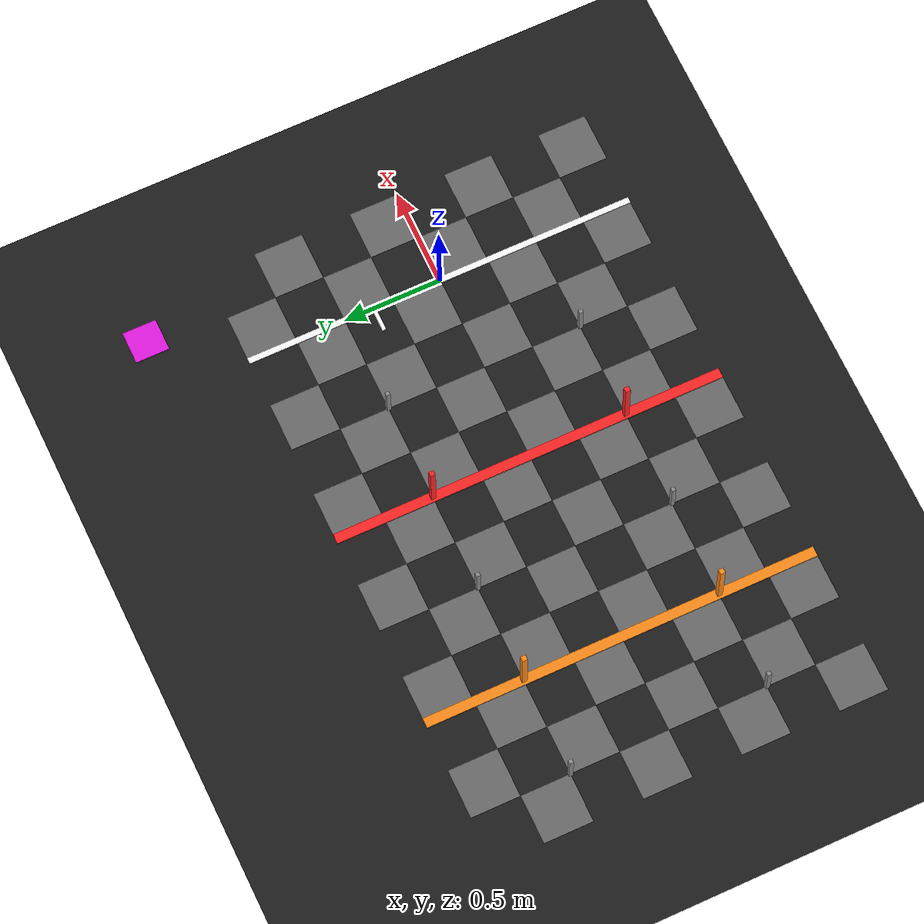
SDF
<sdf version="1.8">
 <world name="reference_grid">
  <model name="ground_plane">
   <static>true</static>
   <link name="link">
    <collision name="collision">
     <geometry><plane><normal>0 0 1</normal><size>40 40</size></plane></geometry>
    </collision>
    <visual name="visual">
     <geometry><plane><normal>0 0 1</normal><size>40 40</size></plane></geometry>
     <material><ambient>0.12 0.12 0.12 1</ambient><diffuse>0.12 0.12 0.12 1</diffuse></material>
    </visual>
   </link>
  </model>
  <model name="tile_52">
   <static>true</static>
   <pose>-2.6250 -0.8750 0.001 0 0 0</pose>
   <link name="link">
    <visual name="v">
     <geometry><box><size>0.25 0.25 0.002</size></box></geometry>
     <material><ambient>0.42 0.42 0.42 1</ambient><diffuse>0.42 0.42 0.42 1</diffuse></material>
    </visual>
   </link>
  </model>
  <model name="tile_53">
   <static>true</static>
   <pose>-2.6250 -0.3750 0.001 0 0 0</pose>
   <link name="link">
    <visual name="v">
     <geometry><box><size>0.25 0.25 0.002</size></box></geometry>
     <material><ambient>0.42 0.42 0.42 1</ambient><diffuse>0.42 0.42 0.42 1</diffuse></material>
    </visual>
   </link>
  </model>
  <model name="tile_54">
   <static>true</static>
   <pose>-2.6250 0.1250 0.001 0 0 0</pose>
   <link name="link">
    <visual name="v">
     <geometry><box><size>0.25 0.25 0.002</size></box></geometry>
     <material><ambient>0.42 0.42 0.42 1</ambient><diffuse>0.42 0.42 0.42 1</diffuse></material>
    </visual>
   </link>
  </model>
  <model name="tile_55">
   <static>true</static>
   <pose>-2.6250 0.6250 0.001 0 0 0</pose>
   <link name="link">
    <visual name="v">
     <geometry><box><size>0.25 0.25 0.002</size></box></geometry>
     <material><ambient>0.42 0.42 0.42 1</ambient><diffuse>0.42 0.42 0.42 1</diffuse></material>
    </visual>
   </link>
  </model>
  <model name="tile_56">
   <static>true</static>
   <pose>-2.3750 -0.6250 0.001 0 0 0</pose>
   <link name="link">
    <visual name="v">
     <geometry><box><size>0.25 0.25 0.002</size></box></geometry>
     <material><ambient>0.42 0.42 0.42 1</ambient><diffuse>0.42 0.42 0.42 1</diffuse></material>
    </visual>
   </link>
  </model>
  <model name="tile_57">
   <static>true</static>
   <pose>-2.3750 -0.1250 0.001 0 0 0</pose>
   <link name="link">
    <visual name="v">
     <geometry><box><size>0.25 0.25 0.002</size></box></geometry>
     <material><ambient>0.42 0.42 0.42 1</ambient><diffuse>0.42 0.42 0.42 1</diffuse></material>
    </visual>
   </link>
  </model>
  <model name="tile_58">
   <static>true</static>
   <pose>-2.3750 0.3750 0.001 0 0 0</pose>
   <link name="link">
    <visual name="v">
     <geometry><box><size>0.25 0.25 0.002</size></box></geometry>
     <material><ambient>0.42 0.42 0.42 1</ambient><diffuse>0.42 0.42 0.42 1</diffuse></material>
    </visual>
   </link>
  </model>
  <model name="tile_59">
   <static>true</static>
   <pose>-2.3750 0.8750 0.001 0 0 0</pose>
   <link name="link">
    <visual name="v">
     <geometry><box><size>0.25 0.25 0.002</size></box></geometry>
     <material><ambient>0.42 0.42 0.42 1</ambient><diffuse>0.42 0.42 0.42 1</diffuse></material>
    </visual>
   </link>
  </model>
  <model name="tile_60">
   <static>true</static>
   <pose>-2.1250 -0.8750 0.001 0 0 0</pose>
   <link name="link">
    <visual name="v">
     <geometry><box><size>0.25 0.25 0.002</size></box></geometry>
     <material><ambient>0.42 0.42 0.42 1</ambient><diffuse>0.42 0.42 0.42 1</diffuse></material>
    </visual>
   </link>
  </model>
  <model name="tile_61">
   <static>true</static>
   <pose>-2.1250 -0.3750 0.001 0 0 0</pose>
   <link name="link">
    <visual name="v">
     <geometry><box><size>0.25 0.25 0.002</size></box></geometry>
     <material><ambient>0.42 0.42 0.42 1</ambient><diffuse>0.42 0.42 0.42 1</diffuse></material>
    </visual>
   </link>
  </model>
  <model name="tile_62">
   <static>true</static>
   <pose>-2.1250 0.1250 0.001 0 0 0</pose>
   <link name="link">
    <visual name="v">
     <geometry><box><size>0.25 0.25 0.002</size></box></geometry>
     <material><ambient>0.42 0.42 0.42 1</ambient><diffuse>0.42 0.42 0.42 1</diffuse></material>
    </visual>
   </link>
  </model>
  <model name="tile_63">
   <static>true</static>
   <pose>-2.1250 0.6250 0.001 0 0 0</pose>
   <link name="link">
    <visual name="v">
     <geometry><box><size>0.25 0.25 0.002</size></box></geometry>
     <material><ambient>0.42 0.42 0.42 1</ambient><diffuse>0.42 0.42 0.42 1</diffuse></material>
    </visual>
   </link>
  </model>
  <model name="tile_64">
   <static>true</static>
   <pose>-1.8750 -0.6250 0.001 0 0 0</pose>
   <link name="link">
    <visual name="v">
     <geometry><box><size>0.25 0.25 0.002</size></box></geometry>
     <material><ambient>0.42 0.42 0.42 1</ambient><diffuse>0.42 0.42 0.42 1</diffuse></material>
    </visual>
   </link>
  </model>
  <model name="tile_65">
   <static>true</static>
   <pose>-1.8750 -0.1250 0.001 0 0 0</pose>
   <link name="link">
    <visual name="v">
     <geometry><box><size>0.25 0.25 0.002</size></box></geometry>
     <material><ambient>0.42 0.42 0.42 1</ambient><diffuse>0.42 0.42 0.42 1</diffuse></material>
    </visual>
   </link>
  </model>
  <model name="tile_66">
   <static>true</static>
   <pose>-1.8750 0.3750 0.001 0 0 0</pose>
   <link name="link">
    <visual name="v">
     <geometry><box><size>0.25 0.25 0.002</size></box></geometry>
     <material><ambient>0.42 0.42 0.42 1</ambient><diffuse>0.42 0.42 0.42 1</diffuse></material>
    </visual>
   </link>
  </model>
  <model name="tile_67">
   <static>true</static>
   <pose>-1.8750 0.8750 0.001 0 0 0</pose>
   <link name="link">
    <visual name="v">
     <geometry><box><size>0.25 0.25 0.002</size></box></geometry>
     <material><ambient>0.42 0.42 0.42 1</ambient><diffuse>0.42 0.42 0.42 1</diffuse></material>
    </visual>
   </link>
  </model>
  <model name="tile_68">
   <static>true</static>
   <pose>-1.6250 -0.8750 0.001 0 0 0</pose>
   <link name="link">
    <visual name="v">
     <geometry><box><size>0.25 0.25 0.002</size></box></geometry>
     <material><ambient>0.42 0.42 0.42 1</ambient><diffuse>0.42 0.42 0.42 1</diffuse></material>
    </visual>
   </link>
  </model>
  <model name="tile_69">
   <static>true</static>
   <pose>-1.6250 -0.3750 0.001 0 0 0</pose>
   <link name="link">
    <visual name="v">
     <geometry><box><size>0.25 0.25 0.002</size></box></geometry>
     <material><ambient>0.42 0.42 0.42 1</ambient><diffuse>0.42 0.42 0.42 1</diffuse></material>
    </visual>
   </link>
  </model>
  <model name="tile_70">
   <static>true</static>
   <pose>-1.6250 0.1250 0.001 0 0 0</pose>
   <link name="link">
    <visual name="v">
     <geometry><box><size>0.25 0.25 0.002</size></box></geometry>
     <material><ambient>0.42 0.42 0.42 1</ambient><diffuse>0.42 0.42 0.42 1</diffuse></material>
    </visual>
   </link>
  </model>
  <model name="tile_71">
   <static>true</static>
   <pose>-1.6250 0.6250 0.001 0 0 0</pose>
   <link name="link">
    <visual name="v">
     <geometry><box><size>0.25 0.25 0.002</size></box></geometry>
     <material><ambient>0.42 0.42 0.42 1</ambient><diffuse>0.42 0.42 0.42 1</diffuse></material>
    </visual>
   </link>
  </model>
  <model name="tile_72">
   <static>true</static>
   <pose>-1.3750 -0.6250 0.001 0 0 0</pose>
   <link name="link">
    <visual name="v">
     <geometry><box><size>0.25 0.25 0.002</size></box></geometry>
     <material><ambient>0.42 0.42 0.42 1</ambient><diffuse>0.42 0.42 0.42 1</diffuse></material>
    </visual>
   </link>
  </model>
  <model name="tile_73">
   <static>true</static>
   <pose>-1.3750 -0.1250 0.001 0 0 0</pose>
   <link name="link">
    <visual name="v">
     <geometry><box><size>0.25 0.25 0.002</size></box></geometry>
     <material><ambient>0.42 0.42 0.42 1</ambient><diffuse>0.42 0.42 0.42 1</diffuse></material>
    </visual>
   </link>
  </model>
  <model name="tile_74">
   <static>true</static>
   <pose>-1.3750 0.3750 0.001 0 0 0</pose>
   <link name="link">
    <visual name="v">
     <geometry><box><size>0.25 0.25 0.002</size></box></geometry>
     <material><ambient>0.42 0.42 0.42 1</ambient><diffuse>0.42 0.42 0.42 1</diffuse></material>
    </visual>
   </link>
  </model>
  <model name="tile_75">
   <static>true</static>
   <pose>-1.3750 0.8750 0.001 0 0 0</pose>
   <link name="link">
    <visual name="v">
     <geometry><box><size>0.25 0.25 0.002</size></box></geometry>
     <material><ambient>0.42 0.42 0.42 1</ambient><diffuse>0.42 0.42 0.42 1</diffuse></material>
    </visual>
   </link>
  </model>
  <model name="tile_76">
   <static>true</static>
   <pose>-1.1250 -0.8750 0.001 0 0 0</pose>
   <link name="link">
    <visual name="v">
     <geometry><box><size>0.25 0.25 0.002</size></box></geometry>
     <material><ambient>0.42 0.42 0.42 1</ambient><diffuse>0.42 0.42 0.42 1</diffuse></material>
    </visual>
   </link>
  </model>
  <model name="tile_77">
   <static>true</static>
   <pose>-1.1250 -0.3750 0.001 0 0 0</pose>
   <link name="link">
    <visual name="v">
     <geometry><box><size>0.25 0.25 0.002</size></box></geometry>
     <material><ambient>0.42 0.42 0.42 1</ambient><diffuse>0.42 0.42 0.42 1</diffuse></material>
    </visual>
   </link>
  </model>
  <model name="tile_78">
   <static>true</static>
   <pose>-1.1250 0.1250 0.001 0 0 0</pose>
   <link name="link">
    <visual name="v">
     <geometry><box><size>0.25 0.25 0.002</size></box></geometry>
     <material><ambient>0.42 0.42 0.42 1</ambient><diffuse>0.42 0.42 0.42 1</diffuse></material>
    </visual>
   </link>
  </model>
  <model name="tile_79">
   <static>true</static>
   <pose>-1.1250 0.6250 0.001 0 0 0</pose>
   <link name="link">
    <visual name="v">
     <geometry><box><size>0.25 0.25 0.002</size></box></geometry>
     <material><ambient>0.42 0.42 0.42 1</ambient><diffuse>0.42 0.42 0.42 1</diffuse></material>
    </visual>
   </link>
  </model>
  <model name="tile_80">
   <static>true</static>
   <pose>-0.8750 -0.6250 0.001 0 0 0</pose>
   <link name="link">
    <visual name="v">
     <geometry><box><size>0.25 0.25 0.002</size></box></geometry>
     <material><ambient>0.42 0.42 0.42 1</ambient><diffuse>0.42 0.42 0.42 1</diffuse></material>
    </visual>
   </link>
  </model>
  <model name="tile_81">
   <static>true</static>
   <pose>-0.8750 -0.1250 0.001 0 0 0</pose>
   <link name="link">
    <visual name="v">
     <geometry><box><size>0.25 0.25 0.002</size></box></geometry>
     <material><ambient>0.42 0.42 0.42 1</ambient><diffuse>0.42 0.42 0.42 1</diffuse></material>
    </visual>
   </link>
  </model>
  <model name="tile_82">
   <static>true</static>
   <pose>-0.8750 0.3750 0.001 0 0 0</pose>
   <link name="link">
    <visual name="v">
     <geometry><box><size>0.25 0.25 0.002</size></box></geometry>
     <material><ambient>0.42 0.42 0.42 1</ambient><diffuse>0.42 0.42 0.42 1</diffuse></material>
    </visual>
   </link>
  </model>
  <model name="tile_83">
   <static>true</static>
   <pose>-0.8750 0.8750 0.001 0 0 0</pose>
   <link name="link">
    <visual name="v">
     <geometry><box><size>0.25 0.25 0.002</size></box></geometry>
     <material><ambient>0.42 0.42 0.42 1</ambient><diffuse>0.42 0.42 0.42 1</diffuse></material>
    </visual>
   </link>
  </model>
  <model name="tile_84">
   <static>true</static>
   <pose>-0.6250 -0.8750 0.001 0 0 0</pose>
   <link name="link">
    <visual name="v">
     <geometry><box><size>0.25 0.25 0.002</size></box></geometry>
     <material><ambient>0.42 0.42 0.42 1</ambient><diffuse>0.42 0.42 0.42 1</diffuse></material>
    </visual>
   </link>
  </model>
  <model name="tile_85">
   <static>true</static>
   <pose>-0.6250 -0.3750 0.001 0 0 0</pose>
   <link name="link">
    <visual name="v">
     <geometry><box><size>0.25 0.25 0.002</size></box></geometry>
     <material><ambient>0.42 0.42 0.42 1</ambient><diffuse>0.42 0.42 0.42 1</diffuse></material>
    </visual>
   </link>
  </model>
  <model name="tile_86">
   <static>true</static>
   <pose>-0.6250 0.1250 0.001 0 0 0</pose>
   <link name="link">
    <visual name="v">
     <geometry><box><size>0.25 0.25 0.002</size></box></geometry>
     <material><ambient>0.42 0.42 0.42 1</ambient><diffuse>0.42 0.42 0.42 1</diffuse></material>
    </visual>
   </link>
  </model>
  <model name="tile_87">
   <static>true</static>
   <pose>-0.6250 0.6250 0.001 0 0 0</pose>
   <link name="link">
    <visual name="v">
     <geometry><box><size>0.25 0.25 0.002</size></box></geometry>
     <material><ambient>0.42 0.42 0.42 1</ambient><diffuse>0.42 0.42 0.42 1</diffuse></material>
    </visual>
   </link>
  </model>
  <model name="tile_88">
   <static>true</static>
   <pose>-0.3750 -0.6250 0.001 0 0 0</pose>
   <link name="link">
    <visual name="v">
     <geometry><box><size>0.25 0.25 0.002</size></box></geometry>
     <material><ambient>0.42 0.42 0.42 1</ambient><diffuse>0.42 0.42 0.42 1</diffuse></material>
    </visual>
   </link>
  </model>
  <model name="tile_89">
   <static>true</static>
   <pose>-0.3750 -0.1250 0.001 0 0 0</pose>
   <link name="link">
    <visual name="v">
     <geometry><box><size>0.25 0.25 0.002</size></box></geometry>
     <material><ambient>0.42 0.42 0.42 1</ambient><diffuse>0.42 0.42 0.42 1</diffuse></material>
    </visual>
   </link>
  </model>
  <model name="tile_90">
   <static>true</static>
   <pose>-0.3750 0.3750 0.001 0 0 0</pose>
   <link name="link">
    <visual name="v">
     <geometry><box><size>0.25 0.25 0.002</size></box></geometry>
     <material><ambient>0.42 0.42 0.42 1</ambient><diffuse>0.42 0.42 0.42 1</diffuse></material>
    </visual>
   </link>
  </model>
  <model name="tile_91">
   <static>true</static>
   <pose>-0.3750 0.8750 0.001 0 0 0</pose>
   <link name="link">
    <visual name="v">
     <geometry><box><size>0.25 0.25 0.002</size></box></geometry>
     <material><ambient>0.42 0.42 0.42 1</ambient><diffuse>0.42 0.42 0.42 1</diffuse></material>
    </visual>
   </link>
  </model>
  <model name="tile_92">
   <static>true</static>
   <pose>-0.1250 -0.8750 0.001 0 0 0</pose>
   <link name="link">
    <visual name="v">
     <geometry><box><size>0.25 0.25 0.002</size></box></geometry>
     <material><ambient>0.42 0.42 0.42 1</ambient><diffuse>0.42 0.42 0.42 1</diffuse></material>
    </visual>
   </link>
  </model>
  <model name="tile_93">
   <static>true</static>
   <pose>-0.1250 -0.3750 0.001 0 0 0</pose>
   <link name="link">
    <visual name="v">
     <geometry><box><size>0.25 0.25 0.002</size></box></geometry>
     <material><ambient>0.42 0.42 0.42 1</ambient><diffuse>0.42 0.42 0.42 1</diffuse></material>
    </visual>
   </link>
  </model>
  <model name="tile_94">
   <static>true</static>
   <pose>-0.1250 0.1250 0.001 0 0 0</pose>
   <link name="link">
    <visual name="v">
     <geometry><box><size>0.25 0.25 0.002</size></box></geometry>
     <material><ambient>0.42 0.42 0.42 1</ambient><diffuse>0.42 0.42 0.42 1</diffuse></material>
    </visual>
   </link>
  </model>
  <model name="tile_95">
   <static>true</static>
   <pose>-0.1250 0.6250 0.001 0 0 0</pose>
   <link name="link">
    <visual name="v">
     <geometry><box><size>0.25 0.25 0.002</size></box></geometry>
     <material><ambient>0.42 0.42 0.42 1</ambient><diffuse>0.42 0.42 0.42 1</diffuse></material>
    </visual>
   </link>
  </model>
  <model name="tile_96">
   <static>true</static>
   <pose>0.1250 -0.6250 0.001 0 0 0</pose>
   <link name="link">
    <visual name="v">
     <geometry><box><size>0.25 0.25 0.002</size></box></geometry>
     <material><ambient>0.42 0.42 0.42 1</ambient><diffuse>0.42 0.42 0.42 1</diffuse></material>
    </visual>
   </link>
  </model>
  <model name="tile_97">
   <static>true</static>
   <pose>0.1250 -0.1250 0.001 0 0 0</pose>
   <link name="link">
    <visual name="v">
     <geometry><box><size>0.25 0.25 0.002</size></box></geometry>
     <material><ambient>0.42 0.42 0.42 1</ambient><diffuse>0.42 0.42 0.42 1</diffuse></material>
    </visual>
   </link>
  </model>
  <model name="tile_98">
   <static>true</static>
   <pose>0.1250 0.3750 0.001 0 0 0</pose>
   <link name="link">
    <visual name="v">
     <geometry><box><size>0.25 0.25 0.002</size></box></geometry>
     <material><ambient>0.42 0.42 0.42 1</ambient><diffuse>0.42 0.42 0.42 1</diffuse></material>
    </visual>
   </link>
  </model>
  <model name="tile_99">
   <static>true</static>
   <pose>0.1250 0.8750 0.001 0 0 0</pose>
   <link name="link">
    <visual name="v">
     <geometry><box><size>0.25 0.25 0.002</size></box></geometry>
     <material><ambient>0.42 0.42 0.42 1</ambient><diffuse>0.42 0.42 0.42 1</diffuse></material>
    </visual>
   </link>
  </model>
  <model name="tile_100">
   <static>true</static>
   <pose>0.3750 -0.8750 0.001 0 0 0</pose>
   <link name="link">
    <visual name="v">
     <geometry><box><size>0.25 0.25 0.002</size></box></geometry>
     <material><ambient>0.42 0.42 0.42 1</ambient><diffuse>0.42 0.42 0.42 1</diffuse></material>
    </visual>
   </link>
  </model>
  <model name="tile_101">
   <static>true</static>
   <pose>0.3750 -0.3750 0.001 0 0 0</pose>
   <link name="link">
    <visual name="v">
     <geometry><box><size>0.25 0.25 0.002</size></box></geometry>
     <material><ambient>0.42 0.42 0.42 1</ambient><diffuse>0.42 0.42 0.42 1</diffuse></material>
    </visual>
   </link>
  </model>
  <model name="tile_102">
   <static>true</static>
   <pose>0.3750 0.1250 0.001 0 0 0</pose>
   <link name="link">
    <visual name="v">
     <geometry><box><size>0.25 0.25 0.002</size></box></geometry>
     <material><ambient>0.42 0.42 0.42 1</ambient><diffuse>0.42 0.42 0.42 1</diffuse></material>
    </visual>
   </link>
  </model>
  <model name="tile_103">
   <static>true</static>
   <pose>0.3750 0.6250 0.001 0 0 0</pose>
   <link name="link">
    <visual name="v">
     <geometry><box><size>0.25 0.25 0.002</size></box></geometry>
     <material><ambient>0.42 0.42 0.42 1</ambient><diffuse>0.42 0.42 0.42 1</diffuse></material>
    </visual>
   </link>
  </model>
  <model name="start_line">
   <static>true</static>
   <pose>0.0 0 0.005 0 0 0</pose>
   <link name="link">
    <visual name="v">
     <geometry><box><size>0.030 2.0 0.008</size></box></geometry>
     <material><ambient>1 1 1 1</ambient><diffuse>1 1 1 1</diffuse></material>
    </visual>
   </link>
  </model>
  <model name="speed_ref_1s">
   <static>true</static>
   <pose>-0.0625 0.35 0.005 0 0 0</pose>
   <link name="link">
    <visual name="v">
     <geometry><box><size>0.125 0.020 0.008</size></box></geometry>
     <material><ambient>1 1 1 1</ambient><diffuse>1 1 1 1</diffuse></material>
    </visual>
   </link>
  </model>
  <model name="band_1m">
   <static>true</static>
   <pose>-1.0 0 0.006 0 0 0</pose>
   <link name="link">
    <visual name="v">
     <geometry><box><size>0.05 2.0 0.010</size></box></geometry>
     <material><ambient>1.0 0.15 0.15 1</ambient><diffuse>1.0 0.15 0.15 1</diffuse></material>
    </visual>
   </link>
  </model>
  <model name="band_2m">
   <static>true</static>
   <pose>-2.0 0 0.006 0 0 0</pose>
   <link name="link">
    <visual name="v">
     <geometry><box><size>0.05 2.0 0.010</size></box></geometry>
     <material><ambient>1.0 0.55 0.10 1</ambient><diffuse>1.0 0.55 0.10 1</diffuse></material>
    </visual>
   </link>
  </model>
  <model name="post_0p5L">
   <static>true</static>
   <pose>-0.5  0.5 0.09 0 0 0</pose>
   <link name="link">
    <visual name="v">
     <geometry><box><size>0.020 0.020 0.18</size></box></geometry>
     <material><ambient>0.55 0.55 0.55 1</ambient><diffuse>0.55 0.55 0.55 1</diffuse></material>
    </visual>
   </link>
  </model>
  <model name="post_0p5R">
   <static>true</static>
   <pose>-0.5 -0.5 0.09 0 0 0</pose>
   <link name="link">
    <visual name="v">
     <geometry><box><size>0.020 0.020 0.18</size></box></geometry>
     <material><ambient>0.55 0.55 0.55 1</ambient><diffuse>0.55 0.55 0.55 1</diffuse></material>
    </visual>
   </link>
  </model>
  <model name="post_1p5L">
   <static>true</static>
   <pose>-1.5  0.5 0.09 0 0 0</pose>
   <link name="link">
    <visual name="v">
     <geometry><box><size>0.020 0.020 0.18</size></box></geometry>
     <material><ambient>0.55 0.55 0.55 1</ambient><diffuse>0.55 0.55 0.55 1</diffuse></material>
    </visual>
   </link>
  </model>
  <model name="post_1p5R">
   <static>true</static>
   <pose>-1.5 -0.5 0.09 0 0 0</pose>
   <link name="link">
    <visual name="v">
     <geometry><box><size>0.020 0.020 0.18</size></box></geometry>
     <material><ambient>0.55 0.55 0.55 1</ambient><diffuse>0.55 0.55 0.55 1</diffuse></material>
    </visual>
   </link>
  </model>
  <model name="post_2p5L">
   <static>true</static>
   <pose>-2.5  0.5 0.09 0 0 0</pose>
   <link name="link">
    <visual name="v">
     <geometry><box><size>0.020 0.020 0.18</size></box></geometry>
     <material><ambient>0.55 0.55 0.55 1</ambient><diffuse>0.55 0.55 0.55 1</diffuse></material>
    </visual>
   </link>
  </model>
  <model name="post_2p5R">
   <static>true</static>
   <pose>-2.5 -0.5 0.09 0 0 0</pose>
   <link name="link">
    <visual name="v">
     <geometry><box><size>0.020 0.020 0.18</size></box></geometry>
     <material><ambient>0.55 0.55 0.55 1</ambient><diffuse>0.55 0.55 0.55 1</diffuse></material>
    </visual>
   </link>
  </model>
  <model name="mpost_1mL">
   <static>true</static>
   <pose>-1.0  0.5 0.15 0 0 0</pose>
   <link name="link">
    <visual name="v">
     <geometry><box><size>0.025 0.025 0.30</size></box></geometry>
     <material><ambient>1.0 0.15 0.15 1</ambient><diffuse>1.0 0.15 0.15 1</diffuse></material>
    </visual>
   </link>
  </model>
  <model name="mpost_1mR">
   <static>true</static>
   <pose>-1.0 -0.5 0.15 0 0 0</pose>
   <link name="link">
    <visual name="v">
     <geometry><box><size>0.025 0.025 0.30</size></box></geometry>
     <material><ambient>1.0 0.15 0.15 1</ambient><diffuse>1.0 0.15 0.15 1</diffuse></material>
    </visual>
   </link>
  </model>
  <model name="mpost_2mL">
   <static>true</static>
   <pose>-2.0  0.5 0.15 0 0 0</pose>
   <link name="link">
    <visual name="v">
     <geometry><box><size>0.025 0.025 0.30</size></box></geometry>
     <material><ambient>1.0 0.55 0.10 1</ambient><diffuse>1.0 0.55 0.10 1</diffuse></material>
    </visual>
   </link>
  </model>
  <model name="mpost_2mR">
   <static>true</static>
   <pose>-2.0 -0.5 0.15 0 0 0</pose>
   <link name="link">
    <visual name="v">
     <geometry><box><size>0.025 0.025 0.30</size></box></geometry>
     <material><ambient>1.0 0.55 0.10 1</ambient><diffuse>1.0 0.55 0.10 1</diffuse></material>
    </visual>
   </link>
  </model>
  <model name="body_footprint_ref">
   <static>true</static>
   <pose>0.3 1.4 0.005 0 0 0</pose>
   <link name="link">
    <visual name="v">
     <geometry><box><size>0.1656 0.1716 0.008</size></box></geometry>
     <material><ambient>0.9 0.1 0.9 1</ambient><diffuse>0.9 0.1 0.9 1</diffuse></material>
    </visual>
   </link>
  </model>
 </world>
</sdf>
